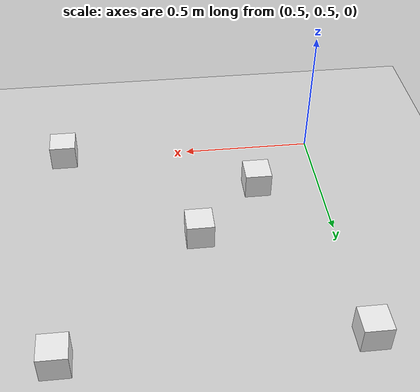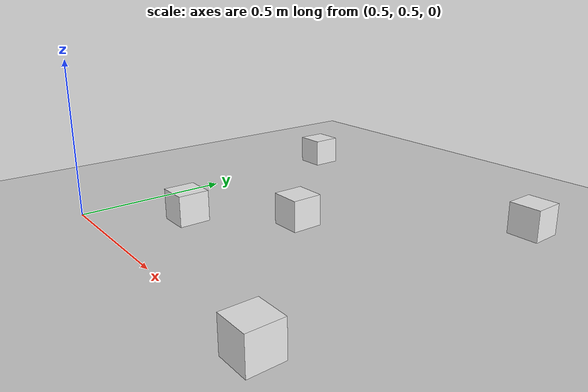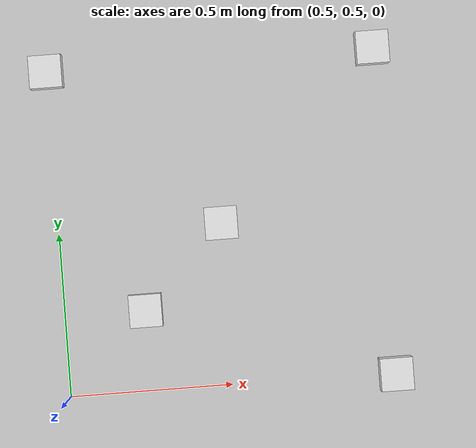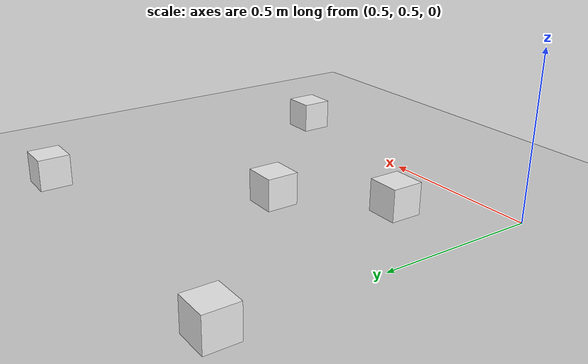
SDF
<?xml version="1.0" ?>
<sdf version="1.6">
  <world name="image_grid_world">

    <!-- Ground plane -->
    <include>
      <uri>model://ground_plane</uri>
    </include>

    <!-- Sun -->
    <include>
      <uri>model://sun</uri>
    </include>

    <!-- Define obstacles -->
    <model name="block_1">
      <pose>1 1 0.05 0 0 0</pose>
      <link name="link_block_1">
        <visual name="visual_block_1">
          <geometry><box><size>0.1 0.1 0.1</size></box></geometry>
          <material>
            <script>
              <uri>file://media/materials/scripts</uri>
              <name>Gazebo/White</name>
            </script>
          </material>
          <texture>file:///home/chester/robot_ws/src/my_robot_description/worlds/images/image1.png</texture>
        </visual>
        <collision name="collision_block_1">
          <geometry><box><size>0.1 0.1 0.1</size></box></geometry>
        </collision>
      </link>
    </model>

    <model name="block_2">
      <pose>0.5 1.5 0.05 0 0 0</pose>
      <link name="link_block_2">
        <visual name="visual_block_2">
          <geometry><box><size>0.1 0.1 0.1</size></box></geometry>
          <material>
            <script>
              <uri>file://media/materials/scripts</uri>
              <name>Gazebo/White</name>
            </script>
          </material>
          <texture>file:///home/chester/robot_ws/src/my_robot_description/worlds/images/image2.png</texture>
        </visual>
        <collision name="collision_block_2">
          <geometry><box><size>0.1 0.1 0.1</size></box></geometry>
        </collision>
      </link>
    </model>

    <model name="block_3">
      <pose>1.5 0.5 0.05 0 0 0</pose>
      <link name="link_block_3">
        <visual name="visual_block_3">
          <geometry><box><size>0.1 0.1 0.1</size></box></geometry>
          <material>
            <script>
              <uri>file://media/materials/scripts</uri>
              <name>Gazebo/White</name>
            </script>
          </material>
          <texture>file:///home/chester/robot_ws/src/my_robot_description/worlds/images/image3.png</texture>
        </visual>
        <collision name="collision_block_3">
          <geometry><box><size>0.1 0.1 0.1</size></box></geometry>
        </collision>
      </link>
    </model>

    <model name="block_4">
      <pose>1.5 1.5 0.05 0 0 0</pose>
      <link name="link_block_4">
        <visual name="visual_block_4">
          <geometry><box><size>0.1 0.1 0.1</size></box></geometry>
          <material>
            <script>
              <uri>file://media/materials/scripts</uri>
              <name>Gazebo/White</name>
            </script>
          </material>
          <texture>file:///home/chester/robot_ws/src/my_robot_description/worlds/images/image4.png</texture>
        </visual>
        <collision name="collision_block_4">
          <geometry><box><size>0.1 0.1 0.1</size></box></geometry>
        </collision>
      </link>
    </model>

    <model name="block_5">
      <pose>0.75 0.75 0.05 0 0 0</pose>
      <link name="link_block_5">
        <visual name="visual_block_5">
          <geometry><box><size>0.1 0.1 0.1</size></box></geometry>
          <material>
            <script>
              <uri>file://media/materials/scripts</uri>
              <name>Gazebo/White</name>
            </script>
          </material>
          <texture>file:///home/chester/robot_ws/src/my_robot_description/worlds/images/image5.png</texture>
        </visual>
        <collision name="collision_block_5">
          <geometry><box><size>0.1 0.1 0.1</size></box></geometry>
        </collision>
      </link>
    </model>

  </world>
</sdf>
